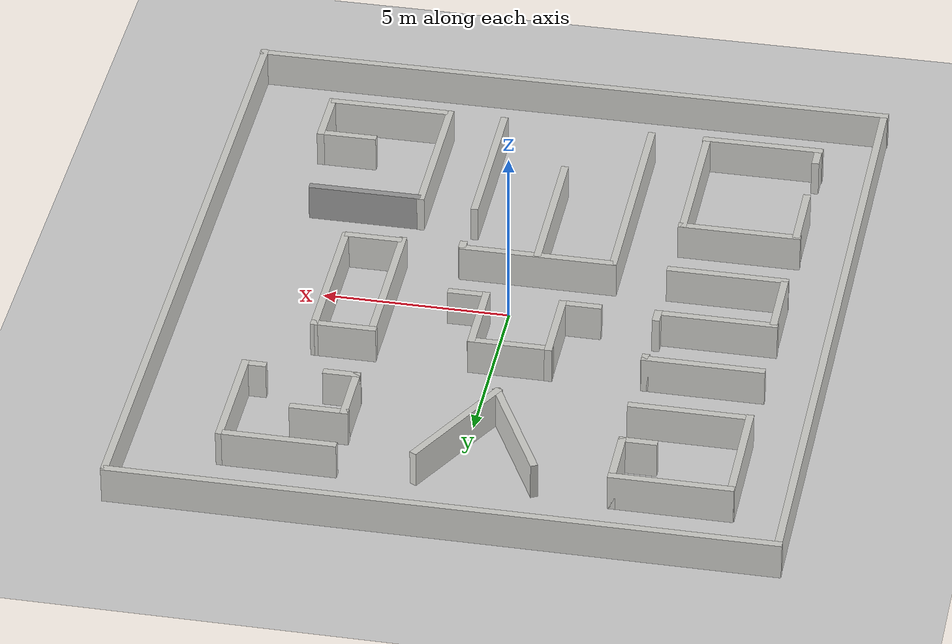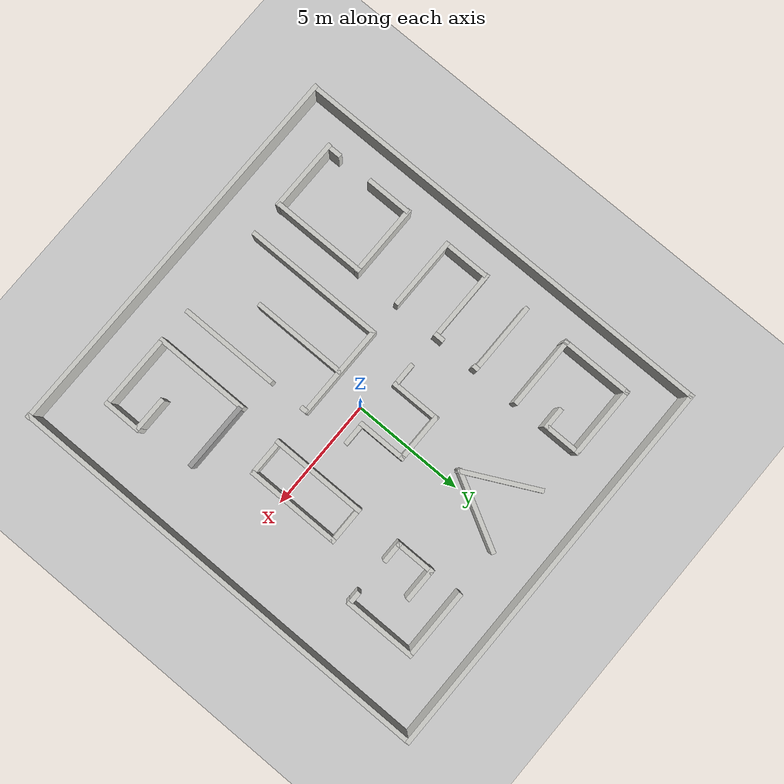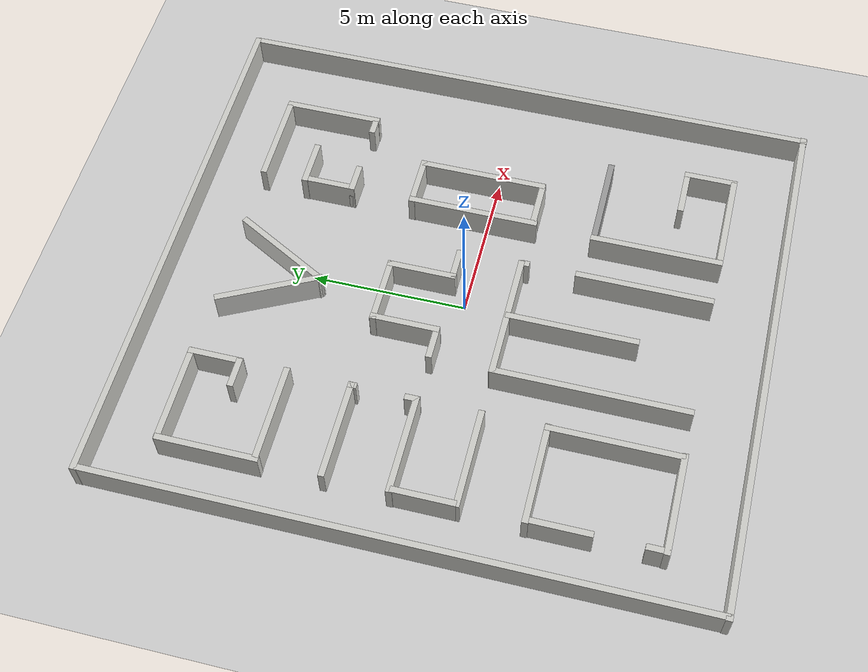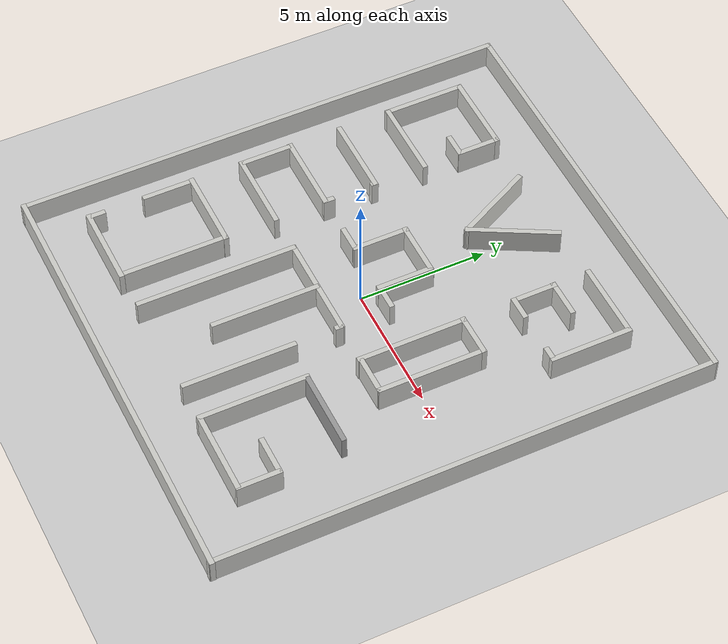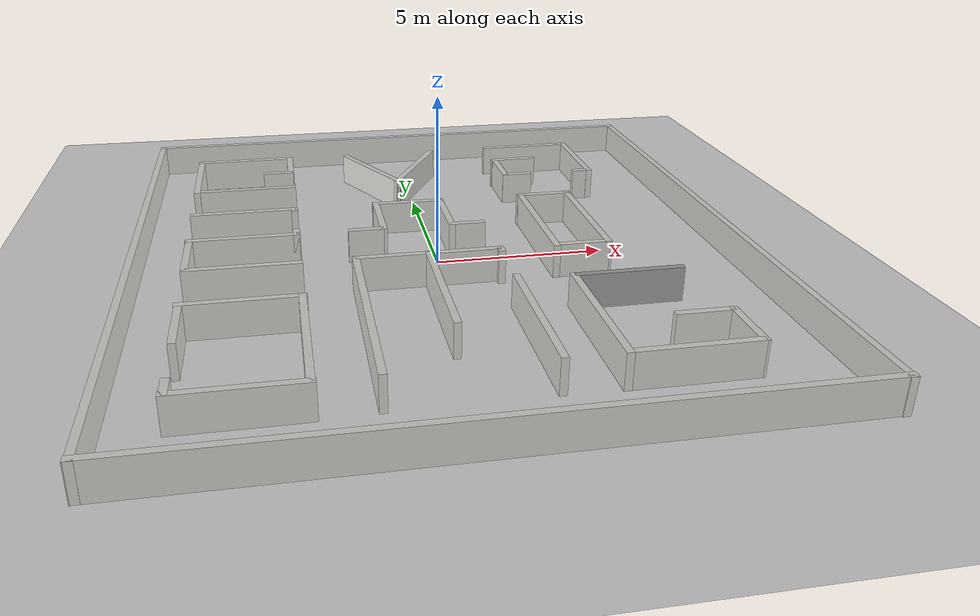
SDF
<?xml version='1.0'?>
<sdf version='1.5'>
	  <world name='default'>
    <gui fullscreen='0'>
      <plugin name='evarobotWidget' filename='libevarobot_widget.so'/>
    </gui>
    <plugin name='maze' filename='libevarobot_map.so'/>
    <light name='sun' type='directional'>
      <cast_shadows>1</cast_shadows>
      <pose>0 0 10 0 -0 0</pose>
      <diffuse>0.8 0.8 0.8 1</diffuse>
      <specular>0.2 0.2 0.2 1</specular>
      <attenuation>
        <range>1000</range>
        <constant>0.9</constant>
        <linear>0.01</linear>
        <quadratic>0.001</quadratic>
      </attenuation>
      <direction>0.5 0.1 -0.9</direction>
    </light>
    <model name='ground_plane'>
      <static>1</static>
      <link name='link'>
        <collision name='collision'>
          <geometry>
            <plane>
              <normal>0 0 1</normal>
              <size>100 100</size>
            </plane>
          </geometry>
          <surface>
            <friction>
              <ode>
                <mu>100</mu>
                <mu2>50</mu2>
              </ode>
            </friction>
            <bounce/>
            <contact>
              <ode/>
            </contact>
          </surface>
          <max_contacts>10</max_contacts>
        </collision>
        <visual name='visual'>
          <cast_shadows>0</cast_shadows>
          <geometry>
            <plane>
              <normal>0 0 1</normal>
              <size>100 100</size>
            </plane>
          </geometry>
          <material>
            <script>
              <uri>file://media/materials/scripts/gazebo.material</uri>
              <name>Gazebo/Grey</name>
            </script>
          </material>
        </visual>
        <velocity_decay>
          <linear>0</linear>
          <angular>0</angular>
        </velocity_decay>
        <self_collide>0</self_collide>
        <kinematic>0</kinematic>
        <gravity>1</gravity>
      </link>
    </model>
    <physics name='default_physics' default='0' type='ode'>
      <max_step_size>0.001</max_step_size>
      <real_time_factor>1</real_time_factor>
      <real_time_update_rate>1000</real_time_update_rate>
      <gravity>0 0 -9.8</gravity>
      <magnetic_field>5.5645e-06 2.28758e-05 -4.23884e-05</magnetic_field>
    </physics>
    <scene>
      <ambient>0.4 0.4 0.4 1</ambient>
      <background>0.7 0.7 0.7 1</background>
      <shadows>1</shadows>
    </scene>
  <model name='ESC2016'>
    <pose>0.005 -0.0085 0 0 -0 0</pose>
    <link name='Wall_0'>
      <collision name='Wall_0_Collision'>
        <geometry>
          <box>
            <size>19.5 0.2 1</size>
          </box>
        </geometry>
        <pose>0 0 0.5 0 -0 0</pose>
      </collision>
      <visual name='Wall_0_Visual'>
        <pose>0 0 0.5 0 -0 0</pose>
        <geometry>
          <box>
            <size>19.5 0.2 1</size>
          </box>
        </geometry>
        <material>
          <script>
            <uri>file://media/materials/scripts/gazebo.material</uri>
            <name>Gazebo/CeilingTiled</name>
          </script>
          <ambient>1 1 1 1</ambient>
        </material>
      </visual>
      <pose>-8.656 -0.0105 0 0 0 -1.5708</pose>
    </link>
    <link name='Wall_101'>
      <collision name='Wall_101_Collision'>
        <geometry>
          <box>
            <size>1.55 0.2 1</size>
          </box>
        </geometry>
        <pose>0 0 0.5 0 -0 0</pose>
      </collision>
      <visual name='Wall_101_Visual'>
        <pose>0 0 0.5 0 -0 0</pose>
        <geometry>
          <box>
            <size>1.55 0.2 1</size>
          </box>
        </geometry>
        <material>
          <script>
            <uri>file://media/materials/scripts/gazebo.material</uri>
            <name>Gazebo/CeilingTiled</name>
          </script>
          <ambient>1 1 1 1</ambient>
        </material>
      </visual>
      <pose>5.554 -6.0955 0 0 -0 0</pose>
    </link>
    <link name='Wall_103'>
      <collision name='Wall_103_Collision'>
        <geometry>
          <box>
            <size>3.45099 0.2 1</size>
          </box>
        </geometry>
        <pose>0 0 0.5 0 -0 0</pose>
      </collision>
      <visual name='Wall_103_Visual'>
        <pose>0 0 0.5 0 -0 0</pose>
        <geometry>
          <box>
            <size>3.45099 0.2 1</size>
          </box>
        </geometry>
        <material>
          <script>
            <uri>file://media/materials/scripts/gazebo.material</uri>
            <name>Gazebo/CeilingTiled</name>
          </script>
          <ambient>1 1 1 1</ambient>
        </material>
      </visual>
      <pose>-1.2975 6.0795 0 0 0 -1.1033</pose>
    </link>
    <link name='Wall_108'>
      <collision name='Wall_108_Collision'>
        <geometry>
          <box>
            <size>3.54437 0.2 1</size>
          </box>
        </geometry>
        <pose>0 0 0.5 0 -0 0</pose>
      </collision>
      <visual name='Wall_108_Visual'>
        <pose>0 0 0.5 0 -0 0</pose>
        <geometry>
          <box>
            <size>3.54437 0.2 1</size>
          </box>
        </geometry>
        <material>
          <script>
            <uri>file://media/materials/scripts/gazebo.material</uri>
            <name>Gazebo/CeilingTiled</name>
          </script>
          <ambient>1 1 1 1</ambient>
        </material>
      </visual>
      <pose>0.2265 6.1015 0 0 0 -2.06387</pose>
    </link>
    <link name='Wall_11'>
      <collision name='Wall_11_Collision'>
        <geometry>
          <box>
            <size>3.25 0.2 1</size>
          </box>
        </geometry>
        <pose>0 0 0.5 0 -0 0</pose>
      </collision>
      <visual name='Wall_11_Visual'>
        <pose>0 0 0.5 0 -0 0</pose>
        <geometry>
          <box>
            <size>3.25 0.2 1</size>
          </box>
        </geometry>
        <material>
          <script>
            <uri>file://media/materials/scripts/gazebo.material</uri>
            <name>Gazebo/CeilingTiled</name>
          </script>
          <ambient>1 1 1 1</ambient>
        </material>
      </visual>
      <pose>-5.598 4.6035 0 0 -0 0</pose>
    </link>
    <link name='Wall_15'>
      <collision name='Wall_15_Collision'>
        <geometry>
          <box>
            <size>3.25 0.2 1</size>
          </box>
        </geometry>
        <pose>0 0 0.5 0 -0 0</pose>
      </collision>
      <visual name='Wall_15_Visual'>
        <pose>0 0 0.5 0 -0 0</pose>
        <geometry>
          <box>
            <size>3.25 0.2 1</size>
          </box>
        </geometry>
        <material>
          <script>
            <uri>file://media/materials/scripts/gazebo.material</uri>
            <name>Gazebo/CeilingTiled</name>
          </script>
          <ambient>1 1 1 1</ambient>
        </material>
      </visual>
      <pose>-7.15 6.1135 0 0 0 -1.5708</pose>
    </link>
    <link name='Wall_17'>
      <collision name='Wall_17_Collision'>
        <geometry>
          <box>
            <size>1.75 0.2 1</size>
          </box>
        </geometry>
        <pose>0 0 0.5 0 -0 0</pose>
      </collision>
      <visual name='Wall_17_Visual'>
        <pose>0 0 0.5 0 -0 0</pose>
        <geometry>
          <box>
            <size>1.75 0.2 1</size>
          </box>
        </geometry>
        <material>
          <script>
            <uri>file://media/materials/scripts/gazebo.material</uri>
            <name>Gazebo/CeilingTiled</name>
          </script>
          <ambient>1 1 1 1</ambient>
        </material>
      </visual>
      <pose>-4.082 6.8815 0 0 0 -1.5708</pose>
    </link>
    <link name='Wall_19'>
      <collision name='Wall_19_Collision'>
        <geometry>
          <box>
            <size>1 0.2 1</size>
          </box>
        </geometry>
        <pose>0 0 0.5 0 -0 0</pose>
      </collision>
      <visual name='Wall_19_Visual'>
        <pose>0 0 0.5 0 -0 0</pose>
        <geometry>
          <box>
            <size>1 0.2 1</size>
          </box>
        </geometry>
        <material>
          <script>
            <uri>file://media/materials/scripts/gazebo.material</uri>
            <name>Gazebo/CeilingTiled</name>
          </script>
          <ambient>1 1 1 1</ambient>
        </material>
      </visual>
      <pose>-4.504 6.1055 0 0 -0 0</pose>
    </link>
    <link name='Wall_2'>
      <collision name='Wall_2_Collision'>
        <geometry>
          <box>
            <size>17.55 0.2 1</size>
          </box>
        </geometry>
        <pose>0 0 0.5 0 -0 0</pose>
      </collision>
      <visual name='Wall_2_Visual'>
        <pose>0 0 0.5 0 -0 0</pose>
        <geometry>
          <box>
            <size>17.55 0.2 1</size>
          </box>
        </geometry>
        <material>
          <script>
            <uri>file://media/materials/scripts/gazebo.material</uri>
            <name>Gazebo/CeilingTiled</name>
          </script>
          <ambient>1 1 1 1</ambient>
        </material>
      </visual>
      <pose>-0 -9.6595 0 0 -0 3.14159</pose>
    </link>
    <link name='Wall_21'>
      <collision name='Wall_21_Collision'>
        <geometry>
          <box>
            <size>3 0.2 1</size>
          </box>
        </geometry>
        <pose>0 0 0.5 0 -0 0</pose>
      </collision>
      <visual name='Wall_21_Visual'>
        <pose>0 0 0.5 0 -0 0</pose>
        <geometry>
          <box>
            <size>3 0.2 1</size>
          </box>
        </geometry>
        <material>
          <script>
            <uri>file://media/materials/scripts/gazebo.material</uri>
            <name>Gazebo/CeilingTiled</name>
          </script>
          <ambient>1 1 1 1</ambient>
        </material>
      </visual>
      <pose>4.545 7.6575 0 0 -0 0</pose>
    </link>
    <link name='Wall_23'>
      <collision name='Wall_23_Collision'>
        <geometry>
          <box>
            <size>3.25 0.2 1</size>
          </box>
        </geometry>
        <pose>0 0 0.5 0 -0 0</pose>
      </collision>
      <visual name='Wall_23_Visual'>
        <pose>0 0 0.5 0 -0 0</pose>
        <geometry>
          <box>
            <size>3.25 0.2 1</size>
          </box>
        </geometry>
        <material>
          <script>
            <uri>file://media/materials/scripts/gazebo.material</uri>
            <name>Gazebo/CeilingTiled</name>
          </script>
          <ambient>1 1 1 1</ambient>
        </material>
      </visual>
      <pose>6.102 6.1295 0 0 -0 1.5708</pose>
    </link>
    <link name='Wall_25'>
      <pose>4.545 4.6125 0 0 -0 0</pose>
      <visual name='Wall_25_Visual_0'>
        <pose>-1.006 0 0.5 0 -0 0</pose>
        <geometry>
          <box>
            <size>0.988005 0.2 1</size>
          </box>
        </geometry>
        <material>
          <script>
            <uri>file://media/materials/scripts/gazebo.material</uri>
            <name>Gazebo/CeilingTiled</name>
          </script>
          <ambient>1 1 1 1</ambient>
        </material>
      </visual>
      <collision name='Wall_25_Collision_0'>
        <geometry>
          <box>
            <size>0.988005 0.2 1</size>
          </box>
        </geometry>
        <pose>-1.006 0 0.5 0 -0 0</pose>
      </collision>
      <visual name='Wall_25_Visual_1'>
        <pose>1.244 0 0.5 0 -0 0</pose>
        <geometry>
          <box>
            <size>0.511995 0.2 1</size>
          </box>
        </geometry>
        <material>
          <script>
            <uri>file://media/materials/scripts/gazebo.material</uri>
            <name>Gazebo/CeilingTiled</name>
          </script>
          <ambient>1 1 1 1</ambient>
        </material>
      </visual>
      <collision name='Wall_25_Collision_1'>
        <geometry>
          <box>
            <size>0.511995 0.2 1</size>
          </box>
        </geometry>
        <pose>1.244 0 0.5 0 -0 0</pose>
      </collision>
    </link>
    <link name='Wall_27'>
      <collision name='Wall_27_Collision'>
        <geometry>
          <box>
            <size>1.8 0.2 1</size>
          </box>
        </geometry>
        <pose>0 0 0.5 0 -0 0</pose>
      </collision>
      <visual name='Wall_27_Visual'>
        <pose>0 0 0.5 0 -0 0</pose>
        <geometry>
          <box>
            <size>1.8 0.2 1</size>
          </box>
        </geometry>
        <material>
          <script>
            <uri>file://media/materials/scripts/gazebo.material</uri>
            <name>Gazebo/CeilingTiled</name>
          </script>
          <ambient>1 1 1 1</ambient>
        </material>
      </visual>
      <pose>3.145 5.4305 0 0 0 -1.5708</pose>
    </link>
    <link name='Wall_31'>
      <collision name='Wall_31_Collision'>
        <geometry>
          <box>
            <size>1.55 0.2 1</size>
          </box>
        </geometry>
        <pose>0 0 0.5 0 -0 0</pose>
      </collision>
      <visual name='Wall_31_Visual'>
        <pose>0 0 0.5 0 -0 0</pose>
        <geometry>
          <box>
            <size>1.55 0.2 1</size>
          </box>
        </geometry>
        <material>
          <script>
            <uri>file://media/materials/scripts/gazebo.material</uri>
            <name>Gazebo/CeilingTiled</name>
          </script>
          <ambient>1 1 1 1</ambient>
        </material>
      </visual>
      <pose>3.803 6.2315 0 0 -0 0</pose>
    </link>
    <link name='Wall_33'>
      <collision name='Wall_33_Collision'>
        <geometry>
          <box>
            <size>3.25 0.2 1</size>
          </box>
        </geometry>
        <pose>0 0 0.5 0 -0 0</pose>
      </collision>
      <visual name='Wall_33_Visual'>
        <pose>0 0 0.5 0 -0 0</pose>
        <geometry>
          <box>
            <size>3.25 0.2 1</size>
          </box>
        </geometry>
        <material>
          <script>
            <uri>file://media/materials/scripts/gazebo.material</uri>
            <name>Gazebo/CeilingTiled</name>
          </script>
          <ambient>1 1 1 1</ambient>
        </material>
      </visual>
      <pose>-5.617 2.5495 0 0 -0 0</pose>
    </link>
    <link name='Wall_35'>
      <pose>-4.082 1.5245 0 0 0 -1.5708</pose>
      <visual name='Wall_35_Visual_0'>
        <pose>-0.984561 0 0.5 0 -0 0</pose>
        <geometry>
          <box>
            <size>0.280878 0.2 1</size>
          </box>
        </geometry>
        <material>
          <script>
            <uri>file://media/materials/scripts/gazebo.material</uri>
            <name>Gazebo/CeilingTiled</name>
          </script>
          <ambient>1 1 1 1</ambient>
        </material>
      </visual>
      <collision name='Wall_35_Collision_0'>
        <geometry>
          <box>
            <size>0.280878 0.2 1</size>
          </box>
        </geometry>
        <pose>-0.984561 0 0.5 0 -0 0</pose>
      </collision>
      <visual name='Wall_35_Visual_1'>
        <pose>0.890439 0 0.5 0 -0 0</pose>
        <geometry>
          <box>
            <size>0.469122 0.2 1</size>
          </box>
        </geometry>
        <material>
          <script>
            <uri>file://media/materials/scripts/gazebo.material</uri>
            <name>Gazebo/CeilingTiled</name>
          </script>
          <ambient>1 1 1 1</ambient>
        </material>
      </visual>
      <collision name='Wall_35_Collision_1'>
        <geometry>
          <box>
            <size>0.469122 0.2 1</size>
          </box>
        </geometry>
        <pose>0.890439 0 0.5 0 -0 0</pose>
      </collision>
    </link>
    <link name='Wall_39'>
      <collision name='Wall_39_Collision'>
        <geometry>
          <box>
            <size>3.25 0.2 1</size>
          </box>
        </geometry>
        <pose>0 0 0.5 0 -0 0</pose>
      </collision>
      <visual name='Wall_39_Visual'>
        <pose>0 0 0.5 0 -0 0</pose>
        <geometry>
          <box>
            <size>3.25 0.2 1</size>
          </box>
        </geometry>
        <material>
          <script>
            <uri>file://media/materials/scripts/gazebo.material</uri>
            <name>Gazebo/CeilingTiled</name>
          </script>
          <ambient>1 1 1 1</ambient>
        </material>
      </visual>
      <pose>-5.637 0.4995 0 0 -0 0</pose>
    </link>
    <link name='Wall_4'>
      <collision name='Wall_4_Collision'>
        <geometry>
          <box>
            <size>19.5 0.2 1</size>
          </box>
        </geometry>
        <pose>0 0 0.5 0 -0 0</pose>
      </collision>
      <visual name='Wall_4_Visual'>
        <pose>0 0 0.5 0 -0 0</pose>
        <geometry>
          <box>
            <size>19.5 0.2 1</size>
          </box>
        </geometry>
        <material>
          <script>
            <uri>file://media/materials/scripts/gazebo.material</uri>
            <name>Gazebo/CeilingTiled</name>
          </script>
          <ambient>1 1 1 1</ambient>
        </material>
      </visual>
      <pose>8.652 -0.0335 0 0 -0 1.5708</pose>
    </link>
    <link name='Wall_41'>
      <collision name='Wall_41_Collision'>
        <geometry>
          <box>
            <size>2 0.2 1</size>
          </box>
        </geometry>
        <pose>0 0 0.5 0 -0 0</pose>
      </collision>
      <visual name='Wall_41_Visual'>
        <pose>0 0 0.5 0 -0 0</pose>
        <geometry>
          <box>
            <size>2 0.2 1</size>
          </box>
        </geometry>
        <material>
          <script>
            <uri>file://media/materials/scripts/gazebo.material</uri>
            <name>Gazebo/CeilingTiled</name>
          </script>
          <ambient>1 1 1 1</ambient>
        </material>
      </visual>
      <pose>-7.142 -0.5105 0 0 0 -1.5708</pose>
    </link>
    <link name='Wall_43'>
      <collision name='Wall_43_Collision'>
        <geometry>
          <box>
            <size>3.25 0.2 1</size>
          </box>
        </geometry>
        <pose>0 0 0.5 0 -0 0</pose>
      </collision>
      <visual name='Wall_43_Visual'>
        <pose>0 0 0.5 0 -0 0</pose>
        <geometry>
          <box>
            <size>3.25 0.2 1</size>
          </box>
        </geometry>
        <material>
          <script>
            <uri>file://media/materials/scripts/gazebo.material</uri>
            <name>Gazebo/CeilingTiled</name>
          </script>
          <ambient>1 1 1 1</ambient>
        </material>
      </visual>
      <pose>-5.617 -1.5145 0 0 -0 0</pose>
    </link>
    <link name='Wall_49'>
      <collision name='Wall_49_Collision'>
        <geometry>
          <box>
            <size>1.04996 0.2 1</size>
          </box>
        </geometry>
        <pose>0 0 0.5 0 -0 0</pose>
      </collision>
      <visual name='Wall_49_Visual'>
        <pose>0 0 0.5 0 -0 0</pose>
        <geometry>
          <box>
            <size>1.04996 0.2 1</size>
          </box>
        </geometry>
        <material>
          <script>
            <uri>file://media/materials/scripts/gazebo.material</uri>
            <name>Gazebo/CeilingTiled</name>
          </script>
          <ambient>1 1 1 1</ambient>
        </material>
      </visual>
      <pose>-2.062 0.5155 0 0 -0 0</pose>
    </link>
    <link name='Wall_52'>
      <collision name='Wall_52_Collision'>
        <geometry>
          <box>
            <size>2.25 0.2 1</size>
          </box>
        </geometry>
        <pose>0 0 0.5 0 -0 0</pose>
      </collision>
      <visual name='Wall_52_Visual'>
        <pose>0 0 0.5 0 -0 0</pose>
        <geometry>
          <box>
            <size>2.25 0.2 1</size>
          </box>
        </geometry>
        <material>
          <script>
            <uri>file://media/materials/scripts/gazebo.material</uri>
            <name>Gazebo/CeilingTiled</name>
          </script>
          <ambient>1 1 1 1</ambient>
        </material>
      </visual>
      <pose>-1.54 1.5505 0 0 0 -1.5708</pose>
    </link>
    <link name='Wall_54'>
      <collision name='Wall_54_Collision'>
        <geometry>
          <box>
            <size>2.25 0.2 1</size>
          </box>
        </geometry>
        <pose>0 0 0.5 0 -0 0</pose>
      </collision>
      <visual name='Wall_54_Visual'>
        <pose>0 0 0.5 0 -0 0</pose>
        <geometry>
          <box>
            <size>2.25 0.2 1</size>
          </box>
        </geometry>
        <material>
          <script>
            <uri>file://media/materials/scripts/gazebo.material</uri>
            <name>Gazebo/CeilingTiled</name>
          </script>
          <ambient>1 1 1 1</ambient>
        </material>
      </visual>
      <pose>-0.523 2.5675 0 0 -0 0</pose>
    </link>
    <link name='Wall_58'>
      <collision name='Wall_58_Collision'>
        <geometry>
          <box>
            <size>2.25 0.2 1</size>
          </box>
        </geometry>
        <pose>0 0 0.5 0 -0 0</pose>
      </collision>
      <visual name='Wall_58_Visual'>
        <pose>0 0 0.5 0 -0 0</pose>
        <geometry>
          <box>
            <size>2.25 0.2 1</size>
          </box>
        </geometry>
        <material>
          <script>
            <uri>file://media/materials/scripts/gazebo.material</uri>
            <name>Gazebo/CeilingTiled</name>
          </script>
          <ambient>1 1 1 1</ambient>
        </material>
      </visual>
      <pose>0.504 1.5385 0 0 -0 1.5708</pose>
    </link>
    <link name='Wall_6'>
      <collision name='Wall_6_Collision'>
        <geometry>
          <box>
            <size>17.5 0.2 1</size>
          </box>
        </geometry>
        <pose>0 0 0.5 0 -0 0</pose>
      </collision>
      <visual name='Wall_6_Visual'>
        <pose>0 0 0.5 0 -0 0</pose>
        <geometry>
          <box>
            <size>17.5 0.2 1</size>
          </box>
        </geometry>
        <material>
          <script>
            <uri>file://media/materials/scripts/gazebo.material</uri>
            <name>Gazebo/CeilingTiled</name>
          </script>
          <ambient>1 1 1 1</ambient>
        </material>
      </visual>
      <pose>-0.012 9.6835 0 0 -0 3.14159</pose>
    </link>
    <link name='Wall_60'>
      <collision name='Wall_60_Collision'>
        <geometry>
          <box>
            <size>1.05 0.2 1</size>
          </box>
        </geometry>
        <pose>0 0 0.5 0 -0 0</pose>
      </collision>
      <visual name='Wall_60_Visual'>
        <pose>0 0 0.5 0 -0 0</pose>
        <geometry>
          <box>
            <size>1.05 0.2 1</size>
          </box>
        </geometry>
        <material>
          <script>
            <uri>file://media/materials/scripts/gazebo.material</uri>
            <name>Gazebo/CeilingTiled</name>
          </script>
          <ambient>1 1 1 1</ambient>
        </material>
      </visual>
      <pose>0.999 0.5235 0 0 -0 0</pose>
    </link>
    <link name='Wall_66'>
      <collision name='Wall_66_Collision'>
        <geometry>
          <box>
            <size>4.25 0.2 1</size>
          </box>
        </geometry>
        <pose>0 0 0.5 0 -0 0</pose>
      </collision>
      <visual name='Wall_66_Visual'>
        <pose>0 0 0.5 0 -0 0</pose>
        <geometry>
          <box>
            <size>4.25 0.2 1</size>
          </box>
        </geometry>
        <material>
          <script>
            <uri>file://media/materials/scripts/gazebo.material</uri>
            <name>Gazebo/CeilingTiled</name>
          </script>
          <ambient>1 1 1 1</ambient>
        </material>
      </visual>
      <pose>4.688 0.5355 0 0 0 -1.5708</pose>
    </link>
    <link name='Wall_68'>
      <collision name='Wall_68_Collision'>
        <geometry>
          <box>
            <size>1.55 0.2 1</size>
          </box>
        </geometry>
        <pose>0 0 0.5 0 -0 0</pose>
      </collision>
      <visual name='Wall_68_Visual'>
        <pose>0 0 0.5 0 -0 0</pose>
        <geometry>
          <box>
            <size>1.55 0.2 1</size>
          </box>
        </geometry>
        <material>
          <script>
            <uri>file://media/materials/scripts/gazebo.material</uri>
            <name>Gazebo/CeilingTiled</name>
          </script>
          <ambient>1 1 1 1</ambient>
        </material>
      </visual>
      <pose>3.935 -1.5115 0 0 -0 0</pose>
    </link>
    <link name='Wall_70'>
      <collision name='Wall_70_Collision'>
        <geometry>
          <box>
            <size>1.74948 0.2 1</size>
          </box>
        </geometry>
        <pose>0 0 0.5 0 -0 0</pose>
      </collision>
      <visual name='Wall_70_Visual'>
        <pose>0 0 0.5 0 -0 0</pose>
        <geometry>
          <box>
            <size>1.74948 0.2 1</size>
          </box>
        </geometry>
        <material>
          <script>
            <uri>file://media/materials/scripts/gazebo.material</uri>
            <name>Gazebo/CeilingTiled</name>
          </script>
          <ambient>1 1 1 1</ambient>
        </material>
      </visual>
      <pose>3.9135 2.5595 0 0 -0 0.001291</pose>
    </link>
    <link name='Wall_74'>
      <collision name='Wall_74_Collision'>
        <geometry>
          <box>
            <size>4.3 0.2 1</size>
          </box>
        </geometry>
        <pose>0 0 0.5 0 -0 0</pose>
      </collision>
      <visual name='Wall_74_Visual'>
        <pose>0 0 0.5 0 -0 0</pose>
        <geometry>
          <box>
            <size>4.3 0.2 1</size>
          </box>
        </geometry>
        <material>
          <script>
            <uri>file://media/materials/scripts/gazebo.material</uri>
            <name>Gazebo/CeilingTiled</name>
          </script>
          <ambient>1 1 1 1</ambient>
        </material>
      </visual>
      <pose>3.15 0.5055 0 0 0 -1.5708</pose>
    </link>
    <link name='Wall_76'>
      <collision name='Wall_76_Collision'>
        <geometry>
          <box>
            <size>3.3 0.2 1</size>
          </box>
        </geometry>
        <pose>0 0 0.5 0 -0 0</pose>
      </collision>
      <visual name='Wall_76_Visual'>
        <pose>0 0 0.5 0 -0 0</pose>
        <geometry>
          <box>
            <size>3.3 0.2 1</size>
          </box>
        </geometry>
        <material>
          <script>
            <uri>file://media/materials/scripts/gazebo.material</uri>
            <name>Gazebo/CeilingTiled</name>
          </script>
          <ambient>1 1 1 1</ambient>
        </material>
      </visual>
      <pose>-5.612 -7.6745 0 0 -0 0</pose>
    </link>
    <link name='Wall_78'>
      <collision name='Wall_78_Collision'>
        <geometry>
          <box>
            <size>4.25 0.2 1</size>
          </box>
        </geometry>
        <pose>0 0 0.5 0 -0 0</pose>
      </collision>
      <visual name='Wall_78_Visual'>
        <pose>0 0 0.5 0 -0 0</pose>
        <geometry>
          <box>
            <size>4.25 0.2 1</size>
          </box>
        </geometry>
        <material>
          <script>
            <uri>file://media/materials/scripts/gazebo.material</uri>
            <name>Gazebo/CeilingTiled</name>
          </script>
          <ambient>1 1 1 1</ambient>
        </material>
      </visual>
      <pose>-4.084 -5.5785 0 0 0 -1.5708</pose>
    </link>
    <link name='Wall_80'>
      <collision name='Wall_80_Collision'>
        <geometry>
          <box>
            <size>3.3 0.2 1</size>
          </box>
        </geometry>
        <pose>0 0 0.5 0 -0 0</pose>
      </collision>
      <visual name='Wall_80_Visual'>
        <pose>0 0 0.5 0 -0 0</pose>
        <geometry>
          <box>
            <size>3.3 0.2 1</size>
          </box>
        </geometry>
        <material>
          <script>
            <uri>file://media/materials/scripts/gazebo.material</uri>
            <name>Gazebo/CeilingTiled</name>
          </script>
          <ambient>1 1 1 1</ambient>
        </material>
      </visual>
      <pose>-5.613 -3.5485 0 0 -0 0</pose>
    </link>
    <link name='Wall_82'>
      <pose>-7.14 -5.6415 0 0 0 -1.5708</pose>
      <visual name='Wall_82_Visual_0'>
        <pose>-1.10975 0 0.5 0 -0 0</pose>
        <geometry>
          <box>
            <size>2.0305 0.2 1</size>
          </box>
        </geometry>
        <material>
          <script>
            <uri>file://media/materials/scripts/gazebo.material</uri>
            <name>Gazebo/CeilingTiled</name>
          </script>
          <ambient>1 1 1 1</ambient>
        </material>
      </visual>
      <collision name='Wall_82_Collision_0'>
        <geometry>
          <box>
            <size>2.0305 0.2 1</size>
          </box>
        </geometry>
        <pose>-1.10975 0 0.5 0 -0 0</pose>
      </collision>
      <visual name='Wall_82_Visual_1'>
        <pose>1.76525 0 0.5 0 -0 0</pose>
        <geometry>
          <box>
            <size>0.7195 0.2 1</size>
          </box>
        </geometry>
        <material>
          <script>
            <uri>file://media/materials/scripts/gazebo.material</uri>
            <name>Gazebo/CeilingTiled</name>
          </script>
          <ambient>1 1 1 1</ambient>
        </material>
      </visual>
      <collision name='Wall_82_Collision_1'>
        <geometry>
          <box>
            <size>0.7195 0.2 1</size>
          </box>
        </geometry>
        <pose>1.76525 0 0.5 0 -0 0</pose>
      </collision>
    </link>
    <link name='Wall_84'>
      <collision name='Wall_84_Collision'>
        <geometry>
          <box>
            <size>6.3 0.2 1</size>
          </box>
        </geometry>
        <pose>0 0 0.5 0 -0 0</pose>
      </collision>
      <visual name='Wall_84_Visual'>
        <pose>0 0 0.5 0 -0 0</pose>
        <geometry>
          <box>
            <size>6.3 0.2 1</size>
          </box>
        </geometry>
        <material>
          <script>
            <uri>file://media/materials/scripts/gazebo.material</uri>
            <name>Gazebo/CeilingTiled</name>
          </script>
          <ambient>1 1 1 1</ambient>
        </material>
      </visual>
      <pose>-2.55 -4.5605 0 0 -0 1.5708</pose>
    </link>
    <link name='Wall_86'>
      <collision name='Wall_86_Collision'>
        <geometry>
          <box>
            <size>4.25 0.2 1</size>
          </box>
        </geometry>
        <pose>0 0 0.5 0 -0 0</pose>
      </collision>
      <visual name='Wall_86_Visual'>
        <pose>0 0 0.5 0 -0 0</pose>
        <geometry>
          <box>
            <size>4.25 0.2 1</size>
          </box>
        </geometry>
        <material>
          <script>
            <uri>file://media/materials/scripts/gazebo.material</uri>
            <name>Gazebo/CeilingTiled</name>
          </script>
          <ambient>1 1 1 1</ambient>
        </material>
      </visual>
      <pose>-0.524 -1.4895 0 0 -0 3.14159</pose>
    </link>
    <link name='Wall_88'>
      <pose>1.528 -4.57409 0 0 -0 1.5708</pose>
      <visual name='Wall_88_Visual_0'>
        <pose>-0.903167 0 0.5 0 -0 0</pose>
        <geometry>
          <box>
            <size>4.44367 0.2 1</size>
          </box>
        </geometry>
        <material>
          <script>
            <uri>file://media/materials/scripts/gazebo.material</uri>
            <name>Gazebo/CeilingTiled</name>
          </script>
          <ambient>1 1 1 1</ambient>
        </material>
      </visual>
      <collision name='Wall_88_Collision_0'>
        <geometry>
          <box>
            <size>4.44367 0.2 1</size>
          </box>
        </geometry>
        <pose>-0.903167 0 0.5 0 -0 0</pose>
      </collision>
      <visual name='Wall_88_Visual_1'>
        <pose>2.97183 0 0.5 0 -0 0</pose>
        <geometry>
          <box>
            <size>0.306334 0.2 1</size>
          </box>
        </geometry>
        <material>
          <script>
            <uri>file://media/materials/scripts/gazebo.material</uri>
            <name>Gazebo/CeilingTiled</name>
          </script>
          <ambient>1 1 1 1</ambient>
        </material>
      </visual>
      <collision name='Wall_88_Collision_1'>
        <geometry>
          <box>
            <size>0.306334 0.2 1</size>
          </box>
        </geometry>
        <pose>2.97183 0 0.5 0 -0 0</pose>
      </collision>
    </link>
    <link name='Wall_9'>
      <collision name='Wall_9_Collision'>
        <geometry>
          <box>
            <size>3.25 0.2 1</size>
          </box>
        </geometry>
        <pose>0 0 0.5 0 -0 0</pose>
      </collision>
      <visual name='Wall_9_Visual'>
        <pose>0 0 0.5 0 -0 0</pose>
        <geometry>
          <box>
            <size>3.25 0.2 1</size>
          </box>
        </geometry>
        <material>
          <script>
            <uri>file://media/materials/scripts/gazebo.material</uri>
            <name>Gazebo/CeilingTiled</name>
          </script>
          <ambient>1 1 1 1</ambient>
        </material>
      </visual>
      <pose>-5.605 7.6565 0 0 -0 0</pose>
    </link>
    <link name='Wall_90'>
      <collision name='Wall_90_Collision'>
        <geometry>
          <box>
            <size>4.25 0.2 1</size>
          </box>
        </geometry>
        <pose>0 0 0.5 0 -0 0</pose>
      </collision>
      <visual name='Wall_90_Visual'>
        <pose>0 0 0.5 0 -0 0</pose>
        <geometry>
          <box>
            <size>4.25 0.2 1</size>
          </box>
        </geometry>
        <material>
          <script>
            <uri>file://media/materials/scripts/gazebo.material</uri>
            <name>Gazebo/CeilingTiled</name>
          </script>
          <ambient>1 1 1 1</ambient>
        </material>
      </visual>
      <pose>-0.51 -3.5545 0 0 -0 1.5708</pose>
    </link>
    <link name='Wall_92'>
      <collision name='Wall_92_Collision'>
        <geometry>
          <box>
            <size>3.05 0.2 1</size>
          </box>
        </geometry>
        <pose>0 0 0.5 0 -0 0</pose>
      </collision>
      <visual name='Wall_92_Visual'>
        <pose>0 0 0.5 0 -0 0</pose>
        <geometry>
          <box>
            <size>3.05 0.2 1</size>
          </box>
        </geometry>
        <material>
          <script>
            <uri>file://media/materials/scripts/gazebo.material</uri>
            <name>Gazebo/Grey</name>
          </script>
          <ambient>1 1 1 1</ambient>
        </material>
      </visual>
      <pose>4.583 -3.5565 0 0 -0 3.14159</pose>
    </link>
    <link name='Wall_94'>
      <collision name='Wall_94_Collision'>
        <geometry>
          <box>
            <size>4.3 0.2 1</size>
          </box>
        </geometry>
        <pose>0 0 0.5 0 -0 0</pose>
      </collision>
      <visual name='Wall_94_Visual'>
        <pose>0 0 0.5 0 -0 0</pose>
        <geometry>
          <box>
            <size>4.3 0.2 1</size>
          </box>
        </geometry>
        <material>
          <script>
            <uri>file://media/materials/scripts/gazebo.material</uri>
            <name>Gazebo/CeilingTiled</name>
          </script>
          <ambient>1 1 1 1</ambient>
        </material>
      </visual>
      <pose>3.041 -5.5955 0 0 0 -1.5708</pose>
    </link>
    <link name='Wall_97'>
      <collision name='Wall_97_Collision'>
        <geometry>
          <box>
            <size>3.25 0.2 1</size>
          </box>
        </geometry>
        <pose>0 0 0.5 0 -0 0</pose>
      </collision>
      <visual name='Wall_97_Visual'>
        <pose>0 0 0.5 0 -0 0</pose>
        <geometry>
          <box>
            <size>3.25 0.2 1</size>
          </box>
        </geometry>
        <material>
          <script>
            <uri>file://media/materials/scripts/gazebo.material</uri>
            <name>Gazebo/CeilingTiled</name>
          </script>
          <ambient>1 1 1 1</ambient>
        </material>
      </visual>
      <pose>4.722 -7.6455 0 0 -0 0</pose>
    </link>
    <link name='Wall_99'>
      <collision name='Wall_99_Collision'>
        <geometry>
          <box>
            <size>1.75 0.2 1</size>
          </box>
        </geometry>
        <pose>0 0 0.5 0 -0 0</pose>
      </collision>
      <visual name='Wall_99_Visual'>
        <pose>0 0 0.5 0 -0 0</pose>
        <geometry>
          <box>
            <size>1.75 0.2 1</size>
          </box>
        </geometry>
        <material>
          <script>
            <uri>file://media/materials/scripts/gazebo.material</uri>
            <name>Gazebo/CeilingTiled</name>
          </script>
          <ambient>1 1 1 1</ambient>
        </material>
      </visual>
      <pose>6.313 -6.8705 0 0 0 -1.5708</pose>
    </link>
    <static>1</static>
  </model>
  </world>
</sdf>
